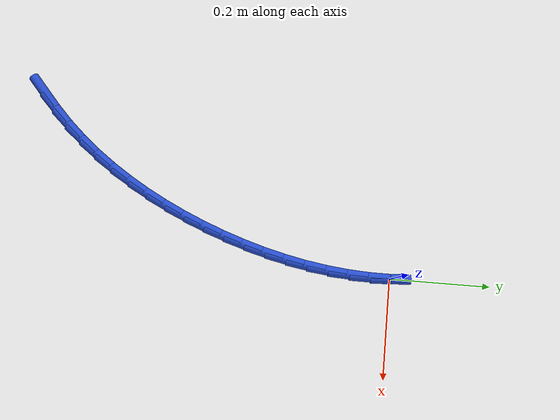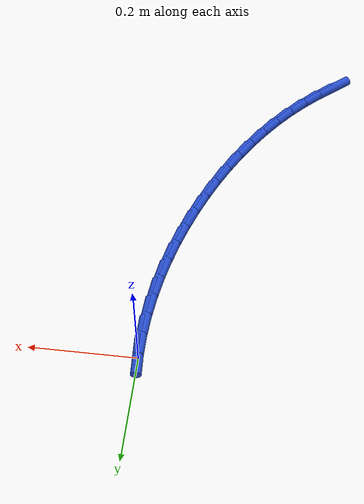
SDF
<sdf version="1.6">
 <world name="default">
  <model name="ground_plane">
   <static>1</static>
   <link name="link">
    <collision name="collision">
     <geometry><plane><normal>0 0 1</normal><size>100 100</size></plane></geometry>
     <surface><friction><ode><mu>100</mu><mu2>50</mu2></ode></friction></surface>
    </collision>
    <visual name="visual">
     <cast_shadows>0</cast_shadows>
     <geometry><plane><normal>0 0 1</normal><size>100 100</size></plane></geometry>
     <material>
      <script><uri>file://media/materials/scripts/gazebo.material</uri><name>Gazebo/WhiteGlow</name></script>
     </material>
    </visual>
   </link>
  </model>
  <model name="line">
   <link name="link_0">
    <pose>-5.204170427930421e-18 -1.3877787807814457e-17 0.01 0 1.57 -1.5182289970396456</pose>
    <collision name="collision">
     <geometry><cylinder><radius>0.01</radius><length>0.08</length></cylinder></geometry>
    </collision>
    <visual name="visual">
     <material>
      <script><name>Gazebo/Blue</name><uri>file://media/materials/scripts/gazebo.material</uri></script>
     </material>
     <geometry><cylinder><radius>0.01</radius><length>0.08</length></cylinder></geometry>
    </visual>
   </link>
   <link name="link_151">
    <pose>-0.32123986832183304 -0.7278649472475346 0.01 0 1.57 0.706455667856515</pose>
    <collision name="collision">
     <geometry><cylinder><radius>0.01</radius><length>0.08</length></cylinder></geometry>
    </collision>
    <visual name="visual">
     <material>
      <script><name>Gazebo/Blue</name><uri>file://media/materials/scripts/gazebo.material</uri></script>
     </material>
     <geometry><cylinder><radius>0.01</radius><length>0.08</length></cylinder></geometry>
    </visual>
   </link>
   <link name="link_152">
    <pose>-0.2894949717856598 -0.7007743442792078 0.01 0 1.57 0.7616015365022758</pose>
    <collision name="collision">
     <geometry><cylinder><radius>0.01</radius><length>0.08</length></cylinder></geometry>
    </collision>
    <visual name="visual">
     <material>
      <script><name>Gazebo/Blue</name><uri>file://media/materials/scripts/gazebo.material</uri></script>
     </material>
     <geometry><cylinder><radius>0.01</radius><length>0.08</length></cylinder></geometry>
    </visual>
   </link>
   <link name="link_153">
    <pose>-0.25921109132103226 -0.67189853077567 0.01 0 1.57 0.8230042797378686</pose>
    <collision name="collision">
     <geometry><cylinder><radius>0.01</radius><length>0.08</length></cylinder></geometry>
    </collision>
    <visual name="visual">
     <material>
      <script><name>Gazebo/Blue</name><uri>file://media/materials/scripts/gazebo.material</uri></script>
     </material>
     <geometry><cylinder><radius>0.01</radius><length>0.08</length></cylinder></geometry>
    </visual>
   </link>
   <link name="link_154">
    <pose>-0.23053308190586055 -0.6409782021838399 0.01 0 1.57 0.8820327273630383</pose>
    <collision name="collision">
     <geometry><cylinder><radius>0.01</radius><length>0.08</length></cylinder></geometry>
    </collision>
    <visual name="visual">
     <material>
      <script><name>Gazebo/Blue</name><uri>file://media/materials/scripts/gazebo.material</uri></script>
     </material>
     <geometry><cylinder><radius>0.01</radius><length>0.08</length></cylinder></geometry>
    </visual>
   </link>
   <link name="link_155">
    <pose>-0.20348264837301938 -0.6081204825163755 0.01 0 1.57 0.9372019624586164</pose>
    <collision name="collision">
     <geometry><cylinder><radius>0.01</radius><length>0.08</length></cylinder></geometry>
    </collision>
    <visual name="visual">
     <material>
      <script><name>Gazebo/Blue</name><uri>file://media/materials/scripts/gazebo.material</uri></script>
     </material>
     <geometry><cylinder><radius>0.01</radius><length>0.08</length></cylinder></geometry>
    </visual>
   </link>
   <link name="link_156">
    <pose>-0.17805580884522273 -0.5735089256136078 0.01 0 1.57 0.9888259153346362</pose>
    <collision name="collision">
     <geometry><cylinder><radius>0.01</radius><length>0.08</length></cylinder></geometry>
    </collision>
    <visual name="visual">
     <material>
      <script><name>Gazebo/Blue</name><uri>file://media/materials/scripts/gazebo.material</uri></script>
     </material>
     <geometry><cylinder><radius>0.01</radius><length>0.08</length></cylinder></geometry>
    </visual>
   </link>
   <link name="link_157">
    <pose>-0.15424858144518466 -0.5373270853158684 0.01 0 1.57 1.0372462256486767</pose>
    <collision name="collision">
     <geometry><cylinder><radius>0.01</radius><length>0.08</length></cylinder></geometry>
    </collision>
    <visual name="visual">
     <material>
      <script><name>Gazebo/Blue</name><uri>file://media/materials/scripts/gazebo.material</uri></script>
     </material>
     <geometry><cylinder><radius>0.01</radius><length>0.08</length></cylinder></geometry>
    </visual>
   </link>
   <link name="link_158">
    <pose>-0.13205698429561882 -0.4997585154634878 0.01 0 1.57 1.0828152800836786</pose>
    <collision name="collision">
     <geometry><cylinder><radius>0.01</radius><length>0.08</length></cylinder></geometry>
    </collision>
    <visual name="visual">
     <material>
      <script><name>Gazebo/Blue</name><uri>file://media/materials/scripts/gazebo.material</uri></script>
     </material>
     <geometry><cylinder><radius>0.01</radius><length>0.08</length></cylinder></geometry>
    </visual>
   </link>
   <link name="link_159">
    <pose>-0.11147703551924006 -0.4609867698967989 0.01 0 1.57 1.1258853261845454</pose>
    <collision name="collision">
     <geometry><cylinder><radius>0.01</radius><length>0.08</length></cylinder></geometry>
    </collision>
    <visual name="visual">
     <material>
      <script><name>Gazebo/Blue</name><uri>file://media/materials/scripts/gazebo.material</uri></script>
     </material>
     <geometry><cylinder><radius>0.01</radius><length>0.08</length></cylinder></geometry>
    </visual>
   </link>
   <link name="link_160">
    <pose>-0.09250475323876206 -0.4211954024561323 0.01 0 1.57 1.1668023849284879</pose>
    <collision name="collision">
     <geometry><cylinder><radius>0.01</radius><length>0.08</length></cylinder></geometry>
    </collision>
    <visual name="visual">
     <material>
      <script><name>Gazebo/Blue</name><uri>file://media/materials/scripts/gazebo.material</uri></script>
     </material>
     <geometry><cylinder><radius>0.01</radius><length>0.08</length></cylinder></geometry>
    </visual>
   </link>
   <link name="link_161">
    <pose>-0.07513615557689882 -0.3805679669818196 0.01 0 1.57 1.2059675880864618</pose>
    <collision name="collision">
     <geometry><cylinder><radius>0.01</radius><length>0.08</length></cylinder></geometry>
    </collision>
    <visual name="visual">
     <material>
      <script><name>Gazebo/Blue</name><uri>file://media/materials/scripts/gazebo.material</uri></script>
     </material>
     <geometry><cylinder><radius>0.01</radius><length>0.08</length></cylinder></geometry>
    </visual>
   </link>
   <link name="link_162">
    <pose>-0.05936958235983463 -0.33928619681341027 0.01 0 1.57 1.2449728924174817</pose>
    <collision name="collision">
     <geometry><cylinder><radius>0.01</radius><length>0.08</length></cylinder></geometry>
    </collision>
    <visual name="visual">
     <material>
      <script><name>Gazebo/Blue</name><uri>file://media/materials/scripts/gazebo.material</uri></script>
     </material>
     <geometry><cylinder><radius>0.01</radius><length>0.08</length></cylinder></geometry>
    </visual>
   </link>
   <link name="link_163">
    <pose>-0.04524991442998173 -0.2974953314153713 0.01 0 1.57 1.2852578590911168</pose>
    <collision name="collision">
     <geometry><cylinder><radius>0.01</radius><length>0.08</length></cylinder></geometry>
    </collision>
    <visual name="visual">
     <material>
      <script><name>Gazebo/Blue</name><uri>file://media/materials/scripts/gazebo.material</uri></script>
     </material>
     <geometry><cylinder><radius>0.01</radius><length>0.08</length></cylinder></geometry>
    </visual>
   </link>
   <link name="link_164">
    <pose>-0.03286505513623483 -0.2553068753210393 0.01 0 1.57 1.3271125888839004</pose>
    <collision name="collision">
     <geometry><cylinder><radius>0.01</radius><length>0.08</length></cylinder></geometry>
    </collision>
    <visual name="visual">
     <material>
      <script><name>Gazebo/Blue</name><uri>file://media/materials/scripts/gazebo.material</uri></script>
     </material>
     <geometry><cylinder><radius>0.01</radius><length>0.08</length></cylinder></geometry>
    </visual>
   </link>
   <link name="link_165">
    <pose>-0.022304524465522692 -0.21283106542089783 0.01 0 1.57 1.3707849374579124</pose>
    <collision name="collision">
     <geometry><cylinder><radius>0.01</radius><length>0.08</length></cylinder></geometry>
    </collision>
    <visual name="visual">
     <material>
      <script><name>Gazebo/Blue</name><uri>file://media/materials/scripts/gazebo.material</uri></script>
     </material>
     <geometry><cylinder><radius>0.01</radius><length>0.08</length></cylinder></geometry>
    </visual>
   </link>
   <link name="link_166">
    <pose>-0.013657842404774374 -0.1701781386054312 0.01 0 1.57 1.416523029185924</pose>
    <collision name="collision">
     <geometry><cylinder><radius>0.01</radius><length>0.08</length></cylinder></geometry>
    </collision>
    <visual name="visual">
     <material>
      <script><name>Gazebo/Blue</name><uri>file://media/materials/scripts/gazebo.material</uri></script>
     </material>
     <geometry><cylinder><radius>0.01</radius><length>0.08</length></cylinder></geometry>
    </visual>
   </link>
   <link name="link_167">
    <pose>-0.007014528940918902 -0.12745833176512397 0.01 0 1.57 1.4645715406101254</pose>
    <collision name="collision">
     <geometry><cylinder><radius>0.01</radius><length>0.08</length></cylinder></geometry>
    </collision>
    <visual name="visual">
     <material>
      <script><name>Gazebo/Blue</name><uri>file://media/materials/scripts/gazebo.material</uri></script>
     </material>
     <geometry><cylinder><radius>0.01</radius><length>0.08</length></cylinder></geometry>
    </visual>
   </link>
   <link name="link_168">
    <pose>-0.0024641040608852534 -0.0847818817904594 0.01 0 1.57 1.515165703724412</pose>
    <collision name="collision">
     <geometry><cylinder><radius>0.01</radius><length>0.08</length></cylinder></geometry>
    </collision>
    <visual name="visual">
     <material>
      <script><name>Gazebo/Blue</name><uri>file://media/materials/scripts/gazebo.material</uri></script>
     </material>
     <geometry><cylinder><radius>0.01</radius><length>0.08</length></cylinder></geometry>
    </visual>
   </link>
   <link name="link_169">
    <pose>-9.608775160264288e-05 -0.04225902557192355 0.01 0 1.57 1.5685225501351416</pose>
    <collision name="collision">
     <geometry><cylinder><radius>0.01</radius><length>0.08</length></cylinder></geometry>
    </collision>
    <visual name="visual">
     <material>
      <script><name>Gazebo/Blue</name><uri>file://media/materials/scripts/gazebo.material</uri></script>
     </material>
     <geometry><cylinder><radius>0.01</radius><length>0.08</length></cylinder></geometry>
    </visual>
   </link>
   <link name="link_170">
    <pose>0.0 2.0816681711721685e-17 0.01 0 1.57 -1.5167636650752376</pose>
    <collision name="collision">
     <geometry><cylinder><radius>0.01</radius><length>0.08</length></cylinder></geometry>
    </collision>
    <visual name="visual">
     <material>
      <script><name>Gazebo/Blue</name><uri>file://media/materials/scripts/gazebo.material</uri></script>
     </material>
     <geometry><cylinder><radius>0.01</radius><length>0.08</length></cylinder></geometry>
    </visual>
   </link>
  </model>
 </world>
</sdf>
